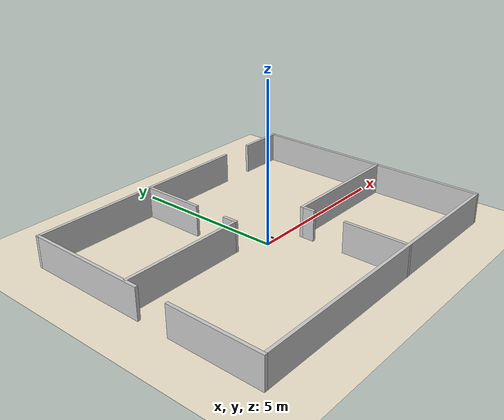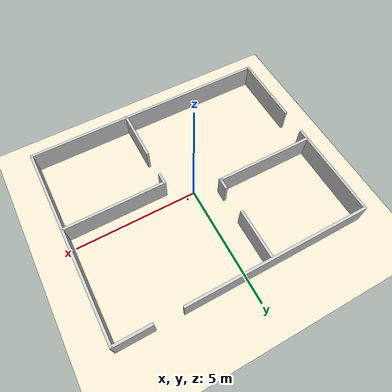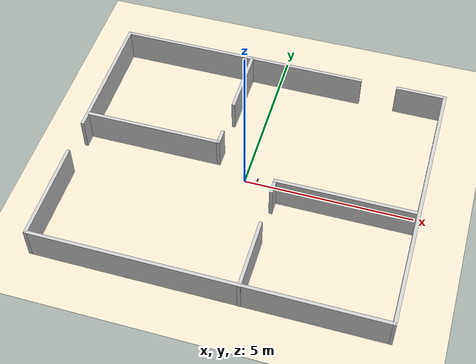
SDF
<?xml version="1.0" ?>
<sdf version="1.6">
  <world name="robot_world">
    <physics name="1ms" type="ignored">
      <max_step_size>0.001</max_step_size>
      <real_time_factor>1.0</real_time_factor>
      <real_time_update_rate>1000</real_time_update_rate>
    </physics>
    <plugin
      filename="ignition-gazebo-physics-system"
      name="gz::sim::systems::Physics">
    </plugin>
    <plugin
      filename="ignition-gazebo-user-commands-system"
      name="gz::sim::systems::UserCommands">
    </plugin>
    <plugin
      filename="ignition-gazebo-scene-broadcaster-system"
      name="gz::sim::systems::SceneBroadcaster">
    </plugin>
    <plugin
      filename="ignition-gazebo-contact-system"
      name="gz::sim::systems::Contact">
    </plugin>
    <gui fullscreen="0">
          <!-- 3D scene -->
          <plugin filename="MinimalScene" name="3D View">
            <gz-gui>
              <title>3D View</title>
              <property type="bool" key="showTitleBar">false</property>
              <property type="string" key="state">docked</property>
            </gz-gui>
            <engine>ogre2</engine>
            <scene>scene</scene>
            <ambient_light>0.4 0.4 0.4</ambient_light>
            <background_color>0.8 0.8 0.8</background_color>
            <camera_pose>-3.5 0 6 0 1.27 0</camera_pose>
            <camera_clip>
              <near>0.25</near>
              <far>25000</far>
            </camera_clip>
          </plugin>

          <!-- Insert simple shapes -->
          <plugin filename="Shapes" name="Shapes">
            <gz-gui>
              <property key="resizable" type="bool">false</property>
              <property key="x" type="double">0</property>
              <property key="y" type="double">0</property>
              <property key="width" type="double">250</property>
              <property key="height" type="double">50</property>
              <property key="state" type="string">floating</property>
              <property key="showTitleBar" type="bool">false</property>
              <property key="cardBackground" type="string">#666666</property>
            </gz-gui>
          </plugin>
          <!-- Translate / rotate -->
          <plugin filename="TransformControl" name="Transform control">
            <gz-gui>
              <property key="resizable" type="bool">false</property>
              <property key="x" type="double">0</property>
              <property key="y" type="double">50</property>
              <property key="width" type="double">250</property>
              <property key="height" type="double">50</property>
              <property key="state" type="string">floating</property>
              <property key="showTitleBar" type="bool">false</property>
              <property key="cardBackground" type="string">#777777</property>
            </gz-gui>
          </plugin>

          <!-- Entity tree -->
          <plugin filename="EntityTree" name="Entity tree">
            <gz-gui>
              <property type="string" key="state">docked_collapsed</property>
            </gz-gui>
          </plugin>

          <!-- Inspector -->
          <plugin filename="ComponentInspector" name="Component inspector">
            <gz-gui>
              <property type="string" key="state">docked_collapsed</property>
            </gz-gui>
          </plugin>

          <!-- World control -->
          <plugin filename="WorldControl" name="World control">
            <gz-gui>
              <title>World control</title>
              <property type="bool" key="showTitleBar">false</property>
              <property type="bool" key="resizable">false</property>
              <property type="double" key="height">72</property>
              <property type="double" key="width">121</property>
              <property type="double" key="z">1</property>

              <property type="string" key="state">floating</property>
              <anchors target="3D View">
                <line own="left" target="left"/>
                <line own="bottom" target="bottom"/>
              </anchors>
            </gz-gui>

            <play_pause>true</play_pause>
            <step>true</step>
            <start_paused>true</start_paused>
            <use_event>true</use_event>

          </plugin>

          <!-- Teleop -->
          <plugin filename="Teleop" name="ignition::gui::plugins::Teleop">
            <topic>/controller/cmd_vel</topic>
            <ignition-gui>
              <property type="bool" key="showTitleBar">true</property>
              <property type="string" key="state">docked</property>
              <property key="resizable" type="bool">true</property>
            </ignition-gui>
          </plugin>

          <!-- visualize lidar -->

          <!-- View angle -->
          <plugin filename="ViewAngle" name="View angle">
            <gz-gui>
              <property type="string" key="state">docked_collapsed</property>
            </gz-gui>
          </plugin>

          <!-- Plugins that add functionality to the scene -->
          <plugin filename="EntityContextMenuPlugin" name="Entity context menu">
          <gz-gui>
            <property key="state" type="string">floating</property>
            <property key="width" type="double">5</property>
            <property key="height" type="double">5</property>
            <property key="showTitleBar" type="bool">false</property>
          </gz-gui>
          </plugin>
          <plugin filename="GzSceneManager" name="Scene Manager">
          <gz-gui>
            <property key="resizable" type="bool">false</property>
            <property key="width" type="double">5</property>
            <property key="height" type="double">5</property>
            <property key="state" type="string">floating</property>
            <property key="showTitleBar" type="bool">false</property>
          </gz-gui>
          </plugin>
          <plugin filename="InteractiveViewControl" name="Interactive view control">
          <gz-gui>
            <property key="resizable" type="bool">false</property>
            <property key="width" type="double">5</property>
            <property key="height" type="double">5</property>
            <property key="state" type="string">floating</property>
            <property key="showTitleBar" type="bool">false</property>
          </gz-gui>
          </plugin>
          <plugin filename="CameraTracking" name="Camera Tracking">
          <gz-gui>
            <property key="resizable" type="bool">false</property>
            <property key="width" type="double">5</property>
            <property key="height" type="double">5</property>
            <property key="state" type="string">floating</property>
            <property key="showTitleBar" type="bool">false</property>
          </gz-gui>
          </plugin>
          <plugin filename="MarkerManager" name="Marker manager">
          <gz-gui>
            <property key="resizable" type="bool">false</property>
            <property key="width" type="double">5</property>
            <property key="height" type="double">5</property>
            <property key="state" type="string">floating</property>
            <property key="showTitleBar" type="bool">false</property>
          </gz-gui>
          </plugin>
          <plugin filename="SelectEntities" name="Select Entities">
          <gz-gui>
            <anchors target="Select entities">
              <line own="right" target="right"/>
              <line own="top" target="top"/>
            </anchors>
            <property key="resizable" type="bool">false</property>
            <property key="width" type="double">5</property>
            <property key="height" type="double">5</property>
            <property key="state" type="string">floating</property>
            <property key="showTitleBar" type="bool">false</property>
          </gz-gui>
          </plugin>
          <plugin filename="VisualizationCapabilities" name="Visualization Capabilities">
          <gz-gui>
            <property key="resizable" type="bool">false</property>
            <property key="width" type="double">5</property>
            <property key="height" type="double">5</property>
            <property key="state" type="string">floating</property>
            <property key="showTitleBar" type="bool">false</property>
          </gz-gui>
          </plugin>

          <plugin filename="Spawn" name="Spawn Entities">
          <gz-gui>
            <anchors target="Select entities">
              <line own="right" target="right"/>
              <line own="top" target="top"/>
            </anchors>
            <property key="resizable" type="bool">false</property>
            <property key="width" type="double">5</property>
            <property key="height" type="double">5</property>
            <property key="state" type="string">floating</property>
            <property key="showTitleBar" type="bool">false</property>
          </gz-gui>
          </plugin>

          <!-- World statistics -->
          <plugin filename="WorldStats" name="World stats">
          <gz-gui>
            <title>World stats</title>
            <property type="bool" key="showTitleBar">false</property>
            <property type="bool" key="resizable">false</property>
            <property type="double" key="height">110</property>
            <property type="double" key="width">290</property>
            <property type="double" key="z">1</property>

            <property type="string" key="state">floating</property>
            <anchors target="3D View">
              <line own="right" target="right"/>
              <line own="bottom" target="bottom"/>
            </anchors>
          </gz-gui>

          <sim_time>true</sim_time>
          <real_time>true</real_time>
          <real_time_factor>true</real_time_factor>
          <iterations>true</iterations>
          </plugin>

          <!-- Insert lights -->
          <plugin filename="Lights" name="Lights">
          <gz-gui>
            <property key="resizable" type="bool">false</property>
            <property key="x" type="double">250</property>
            <property key="y" type="double">0</property>
            <property key="width" type="double">150</property>
            <property key="height" type="double">50</property>
            <property key="state" type="string">floating</property>
            <property key="showTitleBar" type="bool">false</property>
            <property key="cardBackground" type="string">#666666</property>
          </gz-gui>
          </plugin>

          <!-- Screenshot -->
          <plugin filename="Screenshot" name="Screenshot">
          <gz-gui>
            <property key="resizable" type="bool">false</property>
            <property key="x" type="double">250</property>
            <property key="y" type="double">50</property>
            <property key="width" type="double">50</property>
            <property key="height" type="double">50</property>
            <property key="state" type="string">floating</property>
            <property key="showTitleBar" type="bool">false</property>
            <property key="cardBackground" type="string">#777777</property>
          </gz-gui>
          </plugin>

    </gui>
    <scene>
      <ambient>1.0 1.0 1.0</ambient>
      <background>0.8 0.8 0.8</background>
    </scene>
    <light type="directional" name="sun">
      <cast_shadows>true</cast_shadows>
      <pose>0 0 10 0 0 0</pose>
      <diffuse>0.8 0.8 0.8 1</diffuse>
      <specular>0.2 0.2 0.2 1</specular>
      <attenuation>
        <range>1000</range>
        <constant>0.9</constant>
        <linear>0.01</linear>
        <quadratic>0.001</quadratic>
      </attenuation>
      <direction>-0.5 0.1 -0.9</direction>
    </light>

    <model name="ground_plane">
      <static>true</static>
      <link name="link">
        <collision name="collision">
          <geometry>
            <plane>
              <normal>0 0 1</normal>
              <size>100 100</size>
            </plane>
          </geometry>
        </collision>
        <visual name="visual">
          <geometry>
            <plane>
              <normal>0 0 1</normal>
              <size>100 100</size>
            </plane>
          </geometry>
          <material>
            <ambient>0.94 0.90 0.81 1</ambient>
            <diffuse>0.94 0.90 0.81 1</diffuse>
            <specular>1 1 1 0</specular>
          </material>
        </visual>
      </link>
    </model>
    <model name='RoboCup_Home'>
      <pose frame=''>0.0595 -0.023998 0 0 -0 0</pose>
      <link name='Wall_10'>
        <collision name='Wall_10_Collision'>
          <geometry>
            <box>
              <size>8.139 0.1 1</size>
            </box>
          </geometry>
          <pose frame=''>0 0 0.5 0 -0 0</pose>
          <max_contacts>10</max_contacts>
          <surface>
            <contact>
              <ode/>
            </contact>
            <bounce/>
            <friction>
              <torsional>
                <ode/>
              </torsional>
              <ode/>
            </friction>
          </surface>
        </collision>
        <visual name='Wall_10_Visual'>
          <pose frame=''>0 0 0.5 0 -0 0</pose>
          <geometry>
            <box>
              <size>8.139 0.1 1</size>
            </box>
          </geometry>
          <material>
            <ambient>0.8 0.8 0.8 1</ambient>
            <diffuse>0.8 0.8 0.8 1</diffuse>
            <specular>0.8 0.8 0.8 1</specular>
          </material>
        </visual>
        <pose frame=''>5.0505 0.004498 0 0 -0 1.5708</pose>
        <self_collide>0</self_collide>
        <kinematic>0</kinematic>
        <gravity>1</gravity>
      </link>
      <link name='Wall_16'>
        <collision name='Wall_16_Collision'>
          <geometry>
            <box>
              <size>3.03123 0.1 1</size>
            </box>
          </geometry>
          <pose frame=''>0 0 0.5 0 -0 0</pose>
          <max_contacts>10</max_contacts>
          <surface>
            <contact>
              <ode/>
            </contact>
            <bounce/>
            <friction>
              <torsional>
                <ode/>
              </torsional>
              <ode/>
            </friction>
          </surface>
        </collision>
        <visual name='Wall_16_Visual'>
          <pose frame=''>0 0 0.5 0 -0 0</pose>
          <geometry>
            <box>
              <size>3.03123 0.1 1</size>
            </box>
          </geometry>
          <material>
            <ambient>0.8 0.8 0.8 1</ambient>
            <diffuse>0.8 0.8 0.8 1</diffuse>
            <specular>0.8 0.8 0.8 1</specular>
          </material>
        </visual>
        <pose frame=''>-5.0505 -2.5495 0 0 -0 1.5708</pose>
        <self_collide>0</self_collide>
        <kinematic>0</kinematic>
        <gravity>1</gravity>
      </link>
      <link name='Wall_18'>
        <collision name='Wall_18_Collision'>
          <geometry>
            <box>
              <size>4.05777 0.1 1</size>
            </box>
          </geometry>
          <pose frame=''>0 0 0.5 0 -0 0</pose>
          <max_contacts>10</max_contacts>
          <surface>
            <contact>
              <ode/>
            </contact>
            <bounce/>
            <friction>
              <torsional>
                <ode/>
              </torsional>
              <ode/>
            </friction>
          </surface>
        </collision>
        <visual name='Wall_18_Visual'>
          <pose frame=''>0 0 0.5 0 -0 0</pose>
          <geometry>
            <box>
              <size>4.05777 0.1 1</size>
            </box>
          </geometry>
          <material>
            <ambient>0.8 0.8 0.8 1</ambient>
            <diffuse>0.8 0.8 0.8 1</diffuse>
            <specular>0.8 0.8 0.8 1</specular>
          </material>
        </visual>
        <pose frame=''>-5.0505 2.045 0 0 0 -1.5708</pose>
        <self_collide>0</self_collide>
        <kinematic>0</kinematic>
        <gravity>1</gravity>
      </link>
      <link name='Wall_20'>
        <collision name='Wall_20_Collision'>
          <geometry>
            <box>
              <size>7.591 0.1 1</size>
            </box>
          </geometry>
          <pose frame=''>0 0 0.5 0 -0 0</pose>
          <max_contacts>10</max_contacts>
          <surface>
            <contact>
              <ode/>
            </contact>
            <bounce/>
            <friction>
              <torsional>
                <ode/>
              </torsional>
              <ode/>
            </friction>
          </surface>
        </collision>
        <visual name='Wall_20_Visual'>
          <pose frame=''>0 0 0.5 0 -0 0</pose>
          <geometry>
            <box>
              <size>7.591 0.1 1</size>
            </box>
          </geometry>
          <material>
            <ambient>0.8 0.8 0.8 1</ambient>
            <diffuse>0.8 0.8 0.8 1</diffuse>
            <specular>0.8 0.8 0.8 1</specular>
          </material>
        </visual>
        <pose frame=''>-1.305 4.024 0 0 -0 0</pose>
        <self_collide>0</self_collide>
        <kinematic>0</kinematic>
        <gravity>1</gravity>
      </link>
      <link name='Wall_23'>
        <collision name='Wall_23_Collision'>
          <geometry>
            <box>
              <size>1.53 0.1 1</size>
            </box>
          </geometry>
          <pose frame=''>0 0 0.5 0 -0 0</pose>
          <max_contacts>10</max_contacts>
          <surface>
            <contact>
              <ode/>
            </contact>
            <bounce/>
            <friction>
              <torsional>
                <ode/>
              </torsional>
              <ode/>
            </friction>
          </surface>
        </collision>
        <visual name='Wall_23_Visual'>
          <pose frame=''>0 0 0.5 0 -0 0</pose>
          <geometry>
            <box>
              <size>1.53 0.1 1</size>
            </box>
          </geometry>
          <material>
            <ambient>0.8 0.8 0.8 1</ambient>
            <diffuse>0.8 0.8 0.8 1</diffuse>
            <specular>0.8 0.8 0.8 1</specular>
          </material>
        </visual>
        <pose frame=''>4.3355 4.024 0 0 -0 3.14159</pose>
        <self_collide>0</self_collide>
        <kinematic>0</kinematic>
        <gravity>1</gravity>
      </link>
      <link name='Wall_25'>
        <collision name='Wall_25_Collision'>
          <geometry>
            <box>
              <size>4.103 0.1 1</size>
            </box>
          </geometry>
          <pose frame=''>0 0 0.5 0 -0 0</pose>
          <max_contacts>10</max_contacts>
          <surface>
            <contact>
              <ode/>
            </contact>
            <bounce/>
            <friction>
              <torsional>
                <ode/>
              </torsional>
              <ode/>
            </friction>
          </surface>
        </collision>
        <visual name='Wall_25_Visual'>
          <pose frame=''>0 0 0.5 0 -0 0</pose>
          <geometry>
            <box>
              <size>4.103 0.1 1</size>
            </box>
          </geometry>
          <material>
            <ambient>0.8 0.8 0.8 1</ambient>
            <diffuse>0.8 0.8 0.8 1</diffuse>
            <specular>0.8 0.8 0.8 1</specular>
          </material>
        </visual>
        <pose frame=''>-2.991 0.456998 0 0 -0 0</pose>
        <self_collide>0</self_collide>
        <kinematic>0</kinematic>
        <gravity>1</gravity>
      </link>
      <link name='Wall_26'>
        <collision name='Wall_26_Collision'>
          <geometry>
            <box>
              <size>0.491228 0.1 1</size>
            </box>
          </geometry>
          <pose frame=''>0 0 0.5 0 -0 0</pose>
          <max_contacts>10</max_contacts>
          <surface>
            <contact>
              <ode/>
            </contact>
            <bounce/>
            <friction>
              <torsional>
                <ode/>
              </torsional>
              <ode/>
            </friction>
          </surface>
        </collision>
        <visual name='Wall_26_Visual'>
          <pose frame=''>0 0 0.5 0 -0 0</pose>
          <geometry>
            <box>
              <size>0.491228 0.1 1</size>
            </box>
          </geometry>
          <material>
            <ambient>0.8 0.8 0.8 1</ambient>
            <diffuse>0.8 0.8 0.8 1</diffuse>
            <specular>0.8 0.8 0.8 1</specular>
          </material>
        </visual>
        <pose frame=''>-0.9895 0.652498 0 0 -0 1.5708</pose>
        <self_collide>0</self_collide>
        <kinematic>0</kinematic>
        <gravity>1</gravity>
      </link>
      <link name='Wall_28'>
        <collision name='Wall_28_Collision'>
          <geometry>
            <box>
              <size>2.0553 0.1 1</size>
            </box>
          </geometry>
          <pose frame=''>0 0 0.5 0 -0 0</pose>
          <max_contacts>10</max_contacts>
          <surface>
            <contact>
              <ode/>
            </contact>
            <bounce/>
            <friction>
              <torsional>
                <ode/>
              </torsional>
              <ode/>
            </friction>
          </surface>
        </collision>
        <visual name='Wall_28_Visual'>
          <pose frame=''>0 0 0.5 0 -0 0</pose>
          <geometry>
            <box>
              <size>2.0553 0.1 1</size>
            </box>
          </geometry>
          <material>
            <ambient>0.8 0.8 0.8 1</ambient>
            <diffuse>0.8 0.8 0.8 1</diffuse>
            <specular>0.8 0.8 0.8 1</specular>
          </material>
        </visual>
        <pose frame=''>-0.9895 2.9875 0 0 0 -1.5708</pose>
        <self_collide>0</self_collide>
        <kinematic>0</kinematic>
        <gravity>1</gravity>
      </link>
      <link name='Wall_30'>
        <collision name='Wall_30_Collision'>
          <geometry>
            <box>
              <size>4.129 0.1 1</size>
            </box>
          </geometry>
          <pose frame=''>0 0 0.5 0 -0 0</pose>
          <max_contacts>10</max_contacts>
          <surface>
            <contact>
              <ode/>
            </contact>
            <bounce/>
            <friction>
              <torsional>
                <ode/>
              </torsional>
              <ode/>
            </friction>
          </surface>
        </collision>
        <visual name='Wall_30_Visual'>
          <pose frame=''>0 0 0.5 0 -0 0</pose>
          <geometry>
            <box>
              <size>4.129 0.1 1</size>
            </box>
          </geometry>
          <material>
            <ambient>0.8 0.8 0.8 1</ambient>
            <diffuse>0.8 0.8 0.8 1</diffuse>
            <specular>0.8 0.8 0.8 1</specular>
          </material>
        </visual>
        <pose frame=''>2.975 -0.456001 0 0 -0 3.14159</pose>
        <self_collide>0</self_collide>
        <kinematic>0</kinematic>
        <gravity>1</gravity>
      </link>
      <link name='Wall_31'>
        <collision name='Wall_31_Collision'>
          <geometry>
            <box>
              <size>0.49 0.1 1</size>
            </box>
          </geometry>
          <pose frame=''>0 0 0.5 0 -0 0</pose>
          <max_contacts>10</max_contacts>
          <surface>
            <contact>
              <ode/>
            </contact>
            <bounce/>
            <friction>
              <torsional>
                <ode/>
              </torsional>
              <ode/>
            </friction>
          </surface>
        </collision>
        <visual name='Wall_31_Visual'>
          <pose frame=''>0 0 0.5 0 -0 0</pose>
          <geometry>
            <box>
              <size>0.49 0.1 1</size>
            </box>
          </geometry>
          <material>
            <ambient>0.8 0.8 0.8 1</ambient>
            <diffuse>0.8 0.8 0.8 1</diffuse>
            <specular>0.8 0.8 0.8 1</specular>
          </material>
        </visual>
        <pose frame=''>0.9605 -0.651002 0 0 0 -1.5708</pose>
        <self_collide>0</self_collide>
        <kinematic>0</kinematic>
        <gravity>1</gravity>
      </link>
      <link name='Wall_33'>
        <collision name='Wall_33_Collision'>
          <geometry>
            <box>
              <size>2.138 0.1 1</size>
            </box>
          </geometry>
          <pose frame=''>0 0 0.5 0 -0 0</pose>
          <max_contacts>10</max_contacts>
          <surface>
            <contact>
              <ode/>
            </contact>
            <bounce/>
            <friction>
              <torsional>
                <ode/>
              </torsional>
              <ode/>
            </friction>
          </surface>
        </collision>
        <visual name='Wall_33_Visual'>
          <pose frame=''>0 0 0.5 0 -0 0</pose>
          <geometry>
            <box>
              <size>2.138 0.1 1</size>
            </box>
          </geometry>
          <material>
            <ambient>0.8 0.8 0.8 1</ambient>
            <diffuse>0.8 0.8 0.8 1</diffuse>
            <specular>0.8 0.8 0.8 1</specular>
          </material>
        </visual>
        <pose frame=''>0.9605 -3.005 0 0 -0 1.5708</pose>
        <self_collide>0</self_collide>
        <kinematic>0</kinematic>
        <gravity>1</gravity>
      </link>
      <link name='Wall_6'>
        <collision name='Wall_6_Collision'>
          <geometry>
            <box>
              <size>10.2 0.1 1</size>
            </box>
          </geometry>
          <pose frame=''>0 0 0.5 0 -0 0</pose>
          <max_contacts>10</max_contacts>
          <surface>
            <contact>
              <ode/>
            </contact>
            <bounce/>
            <friction>
              <torsional>
                <ode/>
              </torsional>
              <ode/>
            </friction>
          </surface>
        </collision>
        <visual name='Wall_6_Visual'>
          <pose frame=''>0 0 0.5 0 -0 0</pose>
          <geometry>
            <box>
              <size>10.2 0.1 1</size>
            </box>
          </geometry>
          <material>
            <ambient>0.8 0.8 0.8 1</ambient>
            <diffuse>0.8 0.8 0.8 1</diffuse>
            <specular>0.8 0.8 0.8 1</specular>
          </material>
        </visual>
        <pose frame=''>0 -4.015 0 0 -0 0</pose>
        <self_collide>0</self_collide>
        <kinematic>0</kinematic>
        <gravity>1</gravity>
      </link>
      <static>1</static>
    </model>

    <!-- Demo pickup blocks for LanderPi arm -->
    <model name='demo_block_red'>
      <pose>0.35 0.10 0.025 0 0 0</pose>
      <static>false</static>
      <link name='body'>
        <inertial>
          <mass>0.03</mass>
          <inertia>
            <ixx>3.75e-05</ixx>
            <iyy>3.75e-05</iyy>
            <izz>3.75e-05</izz>
          </inertia>
        </inertial>
        <collision name='collision'>
          <geometry>
            <box>
              <size>0.035 0.035 0.035</size>
            </box>
          </geometry>
          <surface>
            <contact>
              <collide_bitmask>0xff</collide_bitmask>
              <ode>
                <kp>200000.0</kp>
                <kd>1000.0</kd>
                <max_vel>0.05</max_vel>
                <min_depth>0.001</min_depth>
              </ode>
            </contact>
            <friction>
              <ode>
                <mu>20.0</mu>
                <mu2>20.0</mu2>
                <slip1>0.0</slip1>
                <slip2>0.0</slip2>
              </ode>
              <torsional>
                <coefficient>10.0</coefficient>
                <use_patch_radius>true</use_patch_radius>
                <patch_radius>0.005</patch_radius>
              </torsional>
            </friction>
          </surface>
        </collision>
        <visual name='visual'>
          <geometry>
            <box>
              <size>0.035 0.035 0.035</size>
            </box>
          </geometry>
          <material>
            <ambient>0.9 0.1 0.1 1</ambient>
            <diffuse>0.9 0.1 0.1 1</diffuse>
          </material>
        </visual>
      </link>
    </model>

    <model name='demo_block_yellow'>
      <pose>0.35 0.0 0.025 0 0 0</pose>
      <static>false</static>
      <link name='body'>
        <inertial>
          <mass>0.03</mass>
          <inertia>
            <ixx>3.75e-05</ixx>
            <iyy>3.75e-05</iyy>
            <izz>3.75e-05</izz>
          </inertia>
        </inertial>
        <collision name='collision'>
          <geometry>
            <box>
              <size>0.035 0.035 0.035</size>
            </box>
          </geometry>
          <surface>
            <contact>
              <collide_bitmask>0xff</collide_bitmask>
              <ode>
                <kp>200000.0</kp>
                <kd>1000.0</kd>
                <max_vel>0.05</max_vel>
                <min_depth>0.001</min_depth>
              </ode>
            </contact>
            <friction>
              <ode>
                <mu>20.0</mu>
                <mu2>20.0</mu2>
                <slip1>0.0</slip1>
                <slip2>0.0</slip2>
              </ode>
              <torsional>
                <coefficient>10.0</coefficient>
                <use_patch_radius>true</use_patch_radius>
                <patch_radius>0.005</patch_radius>
              </torsional>
            </friction>
          </surface>
        </collision>
        <visual name='visual'>
          <geometry>
            <box>
              <size>0.035 0.035 0.035</size>
            </box>
          </geometry>
          <material>
            <ambient>0.9 0.9 0.1 1</ambient>
            <diffuse>0.9 0.9 0.1 1</diffuse>
          </material>
        </visual>
      </link>
    </model>

    <model name='demo_block_blue'>
      <pose>0.35 0.15 0.025 0 0 0</pose>
      <static>false</static>
      <link name='body'>
        <inertial>
          <mass>0.03</mass>
          <inertia>
            <ixx>3.75e-05</ixx>
            <iyy>3.75e-05</iyy>
            <izz>3.75e-05</izz>
          </inertia>
        </inertial>
        <collision name='collision'>
          <geometry>
            <box>
              <size>0.035 0.035 0.035</size>
            </box>
          </geometry>
          <surface>
            <contact>
              <collide_bitmask>0xff</collide_bitmask>
              <ode>
                <kp>200000.0</kp>
                <kd>1000.0</kd>
                <max_vel>0.05</max_vel>
                <min_depth>0.001</min_depth>
              </ode>
            </contact>
            <friction>
              <ode>
                <mu>20.0</mu>
                <mu2>20.0</mu2>
                <slip1>0.0</slip1>
                <slip2>0.0</slip2>
              </ode>
              <torsional>
                <coefficient>10.0</coefficient>
                <use_patch_radius>true</use_patch_radius>
                <patch_radius>0.005</patch_radius>
              </torsional>
            </friction>
          </surface>
        </collision>
        <visual name='visual'>
          <geometry>
            <box>
              <size>0.035 0.035 0.035</size>
            </box>
          </geometry>
          <material>
            <ambient>0.1 0.1 0.9 1</ambient>
            <diffuse>0.1 0.1 0.9 1</diffuse>
          </material>
        </visual>
      </link>
    </model>
  </world>
</sdf>
